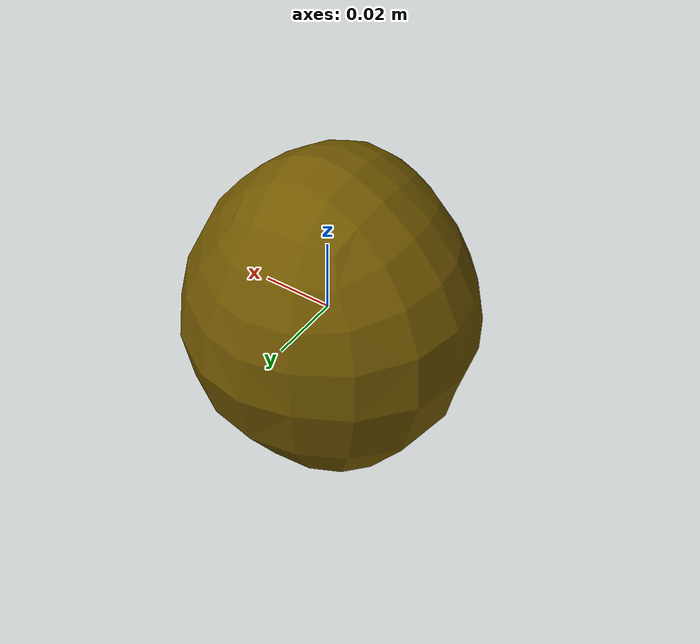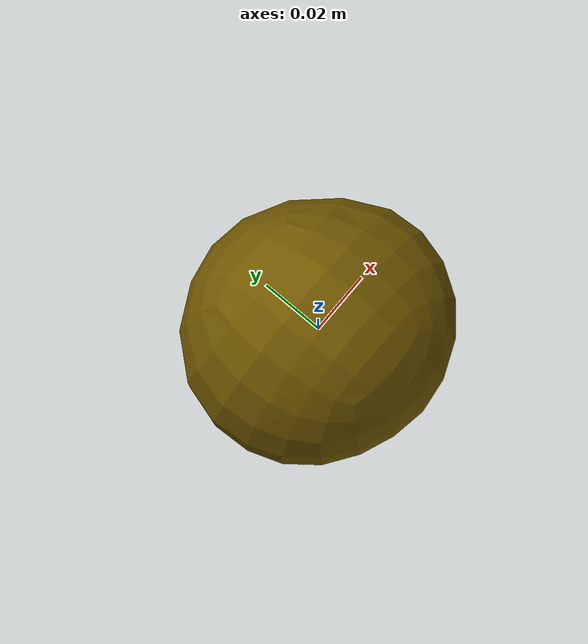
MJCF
<mujoco model="Potato_25">
  <compiler autolimits="true" boundmass="0.01" angle="radian"/>
  <default>
    <default class="/">
      <default class="__VISUAL_MJT__">
        <geom contype="0" conaffinity="0" group="0"/>
      </default>
      <default class="__STRUCTURAL_MJT__">
        <geom contype="8" conaffinity="15" group="4" friction="0.90000000000000002 0.90000000000000002 0.001" solref="0.025000000000000001 1" solimp="0.998 0.998 0.001"/>
      </default>
      <default class="__DYNAMIC_MJT__">
        <geom contype="1" conaffinity="15" group="4" friction="0.90000000000000002 0.90000000000000002 0.001" solref="0.025000000000000001 1" solimp="0.998 0.998 0.001"/>
      </default>
    </default>
  </default>
  <asset>
    <texture name="Potato3_Mat5" type="2d" file="Potato3_AlbedoTransparency.png"/>
    <material name="material_Potato3_Mat5" class="/" texture="Potato3_Mat5" specular="0.5" shininess="0.5" rgba="0.58823530000000002 0.47464499999999998 0 1"/>
    <mesh name="Potato_25_potato_c5" class="/" file="Potato_25_potato_c5/Potato_25_potato_c5.obj" scale="1 1 1"/>
  </asset>
  <worldbody>
    <body name="Potato_25">
      <joint name="Potato_25_free" class="/" type="free" pos="0 0 0" axis="0 0 1" stiffness="0" range="0 0" armature="0" damping="0.10000000000000001" frictionloss="0"/>
      <body name="Potato_25_potato_c5" pos="-9.0000000000000006e-05 0.00057999999494757505 0.0064300001281499862" quat="1 0 0 0">
        <geom name="Potato_25_potato_c5" class="__VISUAL_MJT__" type="mesh" material="material_Potato3_Mat5" shellinertia="true" mesh="Potato_25_potato_c5"/>
        <geom name="Potato_25_PrimitiveCollider_0" class="__DYNAMIC_MJT__" type="capsule" size="0.040282249450683594 0.0065670013427734375" rgba="0 1 0 1" pos="-9.250640869140625e-05 -0.00038397347088903189 0.001172603340819478" quat="1.4751396609986736e-06 0.99999999999891198 0 0"/>
      </body>
    </body>
  </worldbody>
</mujoco>
